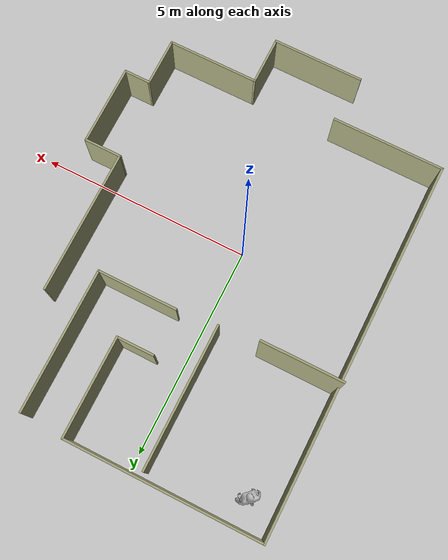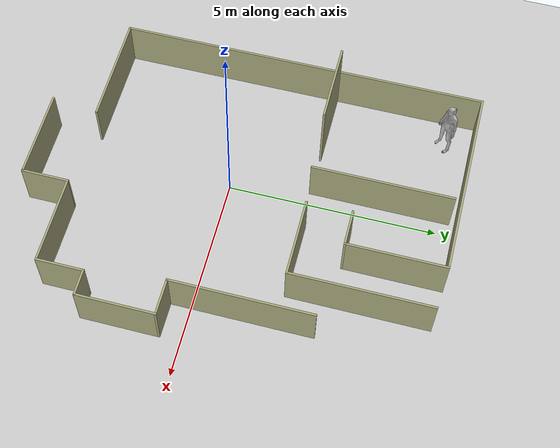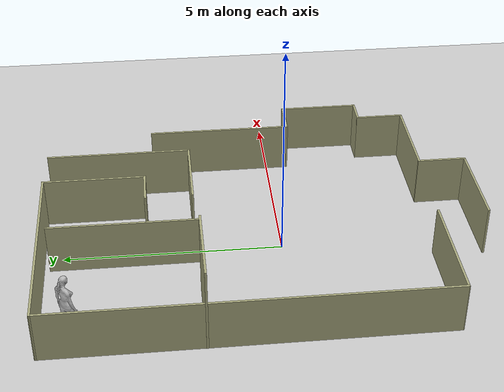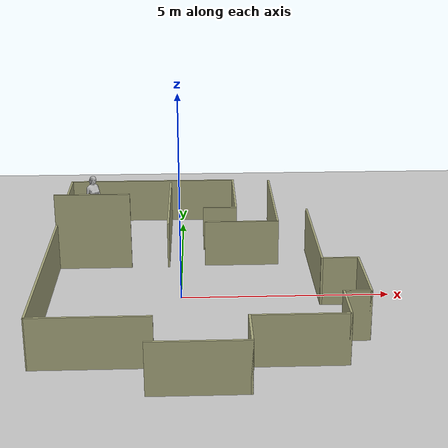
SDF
<?xml version="1.0" ?>

<sdf version="1.5">
  <!-- We use a custom world for the robot so that the camera angle is launched correctly -->
  <world name="diff_drive_world">

    <!-- Add a ground plane -->
    <include>
        <uri>model://ground_plane</uri>
        <material>
            <script>
                <uri>file://media/materials/scripts/gazebo.material</uri>
            </script>
        </material>
    </include>

    <!-- Global light source -->
    <include>
      <uri>model://sun</uri>
    </include>

    <!-- Apartment Walls -->
    <include>
      <uri>model://apartment</uri>
      <pose>0.491830 0.433522 0 0 0 0</pose>
    </include>

    <!-- Human -->
    <include>
		<uri>model://test_human</uri>
		<pose>-2.5 4.75 0 0 1.57 -0.8</pose>
    </include>

    <!-- Set up the solver used for simulation -->
    <physics name="ode_70iters" type="ode">
      <real_time_update_rate>1500</real_time_update_rate>
      <ode>
        <solver>
          <type>quick</type>
          <iters>70</iters>
        </solver>
      </ode>
    </physics>

  </world>
</sdf>

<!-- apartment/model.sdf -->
<sdf version='1.6'>
  <model name='walls'>
    <pose frame=''>0.070483 0.106017 0 0 -0 0</pose>

    <link name='Wall_19'>
      <collision name='Wall_19_Collision'>
        <geometry>
          <box>
            <size>1.9 0.05 2.0</size>
          </box>
        </geometry>
        <pose frame=''>0 0 1.0 0 -0 0</pose>
      </collision>
      <visual name='Wall_19_Visual'>
        <pose frame=''>0 0 1.0 0 -0 0</pose>
        <geometry>
          <box>
            <size>1.9 0.05 2.0</size>
          </box>
        </geometry>
        <material>
          <script>
            <uri>file://media/materials/scripts/gazebo.material</uri>
            <name>Gazebo/Grey</name>
          </script>
          <ambient>0.666667 0.666667 0.498039 1</ambient>
        </material>
      </visual>
      <pose frame=''>-2.73248 1.48798 0 0 -0 0</pose>
    </link>
    <link name='Wall_21'>
      <collision name='Wall_21_Collision'>
        <geometry>
          <box>
            <size>2.15 0.05 1.2</size>
          </box>
        </geometry>
        <pose frame=''>0 0 0.6 0 -0 0</pose>
      </collision>
      <visual name='Wall_21_Visual'>
        <pose frame=''>0 0 0.6 0 -0 0</pose>
        <geometry>
          <box>
            <size>2.15 0.05 1.2</size>
          </box>
        </geometry>
        <material>
          <script>
            <uri>file://media/materials/scripts/gazebo.material</uri>
            <name>Gazebo/Grey</name>
          </script>
          <ambient>0.666667 0.666667 0.498039 1</ambient>
        </material>
      </visual>
      <pose frame=''>-0.092483 -4.98802 0 0 -0 0</pose>
    </link>
    <link name='Wall_22'>
      <collision name='Wall_22_Collision'>
        <geometry>
          <box>
            <size>1.15 0.05 1.2</size>
          </box>
        </geometry>
        <pose frame=''>0 0 0.6 0 -0 0</pose>
      </collision>
      <visual name='Wall_22_Visual'>
        <pose frame=''>0 0 0.6 0 -0 0</pose>
        <geometry>
          <box>
            <size>1.15 0.05 1.2</size>
          </box>
        </geometry>
        <material>
          <script>
            <uri>file://media/materials/scripts/gazebo.material</uri>
            <name>Gazebo/Grey</name>
          </script>
          <ambient>0.666667 0.666667 0.498039 1</ambient>
        </material>
      </visual>
      <pose frame=''>0.957517 -4.43802 0 0 -0 1.5708</pose>
    </link>
    <link name='Wall_23'>
      <collision name='Wall_23_Collision'>
        <geometry>
          <box>
            <size>2.15 0.05 1.2</size>
          </box>
        </geometry>
        <pose frame=''>0 0 0.6 0 -0 0</pose>
      </collision>
      <visual name='Wall_23_Visual'>
        <pose frame=''>0 0 0.6 0 -0 0</pose>
        <geometry>
          <box>
            <size>2.15 0.05 1.2</size>
          </box>
        </geometry>
        <material>
          <script>
            <uri>file://media/materials/scripts/gazebo.material</uri>
            <name>Gazebo/Grey</name>
          </script>
          <ambient>0.666667 0.666667 0.498039 1</ambient>
        </material>
      </visual>
      <pose frame=''>2.00752 -3.88802 0 0 -0 0</pose>
    </link>
    <link name='Wall_24'>
      <collision name='Wall_24_Collision'>
        <geometry>
          <box>
            <size>1.15 0.05 1.2</size>
          </box>
        </geometry>
        <pose frame=''>0 0 0.6 0 -0 0</pose>
      </collision>
      <visual name='Wall_24_Visual'>
        <pose frame=''>0 0 0.6 0 -0 0</pose>
        <geometry>
          <box>
            <size>1.15 0.05 1.2</size>
          </box>
        </geometry>
        <material>
          <script>
            <uri>file://media/materials/scripts/gazebo.material</uri>
            <name>Gazebo/Grey</name>
          </script>
          <ambient>0.666667 0.666667 0.498039 1</ambient>
        </material>
      </visual>
      <pose frame=''>3.05752 -3.33802 0 0 -0 1.5708</pose>
    </link>
    <link name='Wall_25'>
      <collision name='Wall_25_Collision'>
        <geometry>
          <box>
            <size>0.65 0.05 1.2</size>
          </box>
        </geometry>
        <pose frame=''>0 0 0.6 0 -0 0</pose>
      </collision>
      <visual name='Wall_25_Visual'>
        <pose frame=''>0 0 0.6 0 -0 0</pose>
        <geometry>
          <box>
            <size>0.65 0.05 1.2</size>
          </box>
        </geometry>
        <material>
          <script>
            <uri>file://media/materials/scripts/gazebo.material</uri>
            <name>Gazebo/Grey</name>
          </script>
          <ambient>0.666667 0.666667 0.498039 1</ambient>
        </material>
      </visual>
      <pose frame=''>3.35752 -2.78802 0 0 -0 0</pose>
    </link>
    <link name='Wall_26'>
      <collision name='Wall_26_Collision'>
        <geometry>
          <box>
            <size>1.9 0.05 1.2</size>
          </box>
        </geometry>
        <pose frame=''>0 0 0.6 0 -0 0</pose>
      </collision>
      <visual name='Wall_26_Visual'>
        <pose frame=''>0 0 0.6 0 -0 0</pose>
        <geometry>
          <box>
            <size>1.9 0.05 1.2</size>
          </box>
        </geometry>
        <material>
          <script>
            <uri>file://media/materials/scripts/gazebo.material</uri>
            <name>Gazebo/Grey</name>
          </script>
          <ambient>0.666667 0.666667 0.498039 1</ambient>
        </material>
      </visual>
      <pose frame=''>3.65752 -1.86302 0 0 -0 1.5708</pose>
    </link>
    <link name='Wall_27'>
      <collision name='Wall_27_Collision'>
        <geometry>
          <box>
            <size>0.9 0.05 1.2</size>
          </box>
        </geometry>
        <pose frame=''>0 0 0.6 0 -0 0</pose>
      </collision>
      <visual name='Wall_27_Visual'>
        <pose frame=''>0 0 0.6 0 -0 0</pose>
        <geometry>
          <box>
            <size>0.9 0.05 1.2</size>
          </box>
        </geometry>
        <material>
          <script>
            <uri>file://media/materials/scripts/gazebo.material</uri>
            <name>Gazebo/Grey</name>
          </script>
          <ambient>0.666667 0.666667 0.498039 1</ambient>
        </material>
      </visual>
      <pose frame=''>3.23252 -0.938017 0 0 -0 3.14159</pose>
    </link>
    <link name='Wall_36'>
      <collision name='Wall_36_Collision'>
        <geometry>
          <box>
            <size>1.9 0.05 1.2</size>
          </box>
        </geometry>
        <pose frame=''>0 0 0.6 0 -0 0</pose>
      </collision>
      <visual name='Wall_36_Visual'>
        <pose frame=''>0 0 0.6 0 -0 0</pose>
        <geometry>
          <box>
            <size>1.9 0.05 1.2</size>
          </box>
        </geometry>
        <material>
          <script>
            <uri>file://media/materials/scripts/gazebo.material</uri>
            <name>Gazebo/Grey</name>
          </script>
          <ambient>0.666667 0.666667 0.498039 1</ambient>
        </material>
      </visual>
      <pose frame=''>1.04652 1.55798 0 0 -0 0</pose>
    </link>
    <link name='Wall_48'>
      <collision name='Wall_48_Collision'>
        <geometry>
          <box>
            <size>8.90001 0.05 1.2</size>
          </box>
        </geometry>
        <pose frame=''>0 0 0.6 0 -0 0</pose>
      </collision>
      <visual name='Wall_48_Visual'>
        <pose frame=''>0 0 0.6 0 -0 0</pose>
        <geometry>
          <box>
            <size>8.90001 0.05 1.2</size>
          </box>
        </geometry>
        <material>
          <script>
            <uri>file://media/materials/scripts/gazebo.material</uri>
            <name>Gazebo/Grey</name>
          </script>
          <ambient>0.666667 0.666667 0.498039 1</ambient>
        </material>
      </visual>
      <pose frame=''>-3.65148 0.562983 0 0 -0 1.57215</pose>
    </link>
    <link name='Wall_49'>
      <collision name='Wall_49_Collision'>
        <geometry>
          <box>
            <size>4.65 0.05 1.2</size>
          </box>
        </geometry>
        <pose frame=''>0 0 0.6 0 -0 0</pose>
      </collision>
      <visual name='Wall_49_Visual'>
        <pose frame=''>0 0 0.6 0 -0 0</pose>
        <geometry>
          <box>
            <size>4.65 0.05 1.2</size>
          </box>
        </geometry>
        <material>
          <script>
            <uri>file://media/materials/scripts/gazebo.material</uri>
            <name>Gazebo/Grey</name>
          </script>
          <ambient>0.666667 0.666667 0.498039 1</ambient>
        </material>
      </visual>
      <pose frame=''>-1.35748 4.98798 0 0 -0 0</pose>
    </link>
    <link name='Wall_50'>
      <collision name='Wall_50_Collision'>
        <geometry>
          <box>
            <size>2.4 0.05 1.2</size>
          </box>
        </geometry>
        <pose frame=''>0 0 0.6 0 -0 0</pose>
      </collision>
      <visual name='Wall_50_Visual'>
        <pose frame=''>0 0 0.6 0 -0 0</pose>
        <geometry>
          <box>
            <size>2.4 0.05 1.2</size>
          </box>
        </geometry>
        <material>
          <script>
            <uri>file://media/materials/scripts/gazebo.material</uri>
            <name>Gazebo/Grey</name>
          </script>
          <ambient>0.666667 0.666667 0.498039 1</ambient>
        </material>
      </visual>
      <pose frame=''>0.942517 3.81298 0 0 0 -1.5708</pose>
    </link>
    <link name='Wall_51'>
      <collision name='Wall_51_Collision'>
        <geometry>
          <box>
            <size>0.9 0.05 1.2</size>
          </box>
        </geometry>
        <pose frame=''>0 0 0.6 0 -0 0</pose>
      </collision>
      <visual name='Wall_51_Visual'>
        <pose frame=''>0 0 0.6 0 -0 0</pose>
        <geometry>
          <box>
            <size>0.9 0.05 1.2</size>
          </box>
        </geometry>
        <material>
          <script>
            <uri>file://media/materials/scripts/gazebo.material</uri>
            <name>Gazebo/Grey</name>
          </script>
          <ambient>0.666667 0.666667 0.498039 1</ambient>
        </material>
      </visual>
      <pose frame=''>0.517517 2.63798 0 0 -0 3.14159</pose>
    </link>
    <link name='Wall_53'>
      <collision name='Wall_53_Collision'>
        <geometry>
          <box>
            <size>3.4 0.05 1.2</size>
          </box>
        </geometry>
        <pose frame=''>0 0 0.6 0 -0 0</pose>
      </collision>
      <visual name='Wall_53_Visual'>
        <pose frame=''>0 0 0.6 0 -0 0</pose>
        <geometry>
          <box>
            <size>3.4 0.05 1.2</size>
          </box>
        </geometry>
        <material>
          <script>
            <uri>file://media/materials/scripts/gazebo.material</uri>
            <name>Gazebo/Grey</name>
          </script>
          <ambient>0.666667 0.666667 0.498039 1</ambient>
        </material>
      </visual>
      <pose frame=''>-0.835483 3.14198 0 0 -0 1.5708</pose>
    </link>
    <link name='Wall_58'>
      <collision name='Wall_58_Collision'>
        <geometry>
          <box>
            <size>3.4 0.05 1.2</size>
          </box>
        </geometry>
        <pose frame=''>0 0 0.6 0 -0 0</pose>
      </collision>
      <visual name='Wall_58_Visual'>
        <pose frame=''>0 0 0.6 0 -0 0</pose>
        <geometry>
          <box>
            <size>3.4 0.05 1.2</size>
          </box>
        </geometry>
        <material>
          <script>
            <uri>file://media/materials/scripts/gazebo.material</uri>
            <name>Gazebo/Grey</name>
          </script>
          <ambient>0.666667 0.666667 0.498039 1</ambient>
        </material>
      </visual>
      <pose frame=''>1.97152 3.23298 0 0 -0 1.5708</pose>
    </link>
    <link name='Wall_61'>
      <collision name='Wall_61_Collision'>
        <geometry>
          <box>
            <size>2.65 0.05 1.2</size>
          </box>
        </geometry>
        <pose frame=''>0 0 0.6 0 -0 0</pose>
      </collision>
      <visual name='Wall_61_Visual'>
        <pose frame=''>0 0 0.6 0 -0 0</pose>
        <geometry>
          <box>
            <size>2.65 0.05 1.2</size>
          </box>
        </geometry>
        <material>
          <script>
            <uri>file://media/materials/scripts/gazebo.material</uri>
            <name>Gazebo/Grey</name>
          </script>
          <ambient>0.666667 0.666667 0.498039 1</ambient>
        </material>
      </visual>
      <pose frame=''>-2.34548 -3.86202 0 0 -0 0</pose>
    </link>
    <link name='Wall_63'>
      <collision name='Wall_63_Collision'>
        <geometry>
          <box>
            <size>3.4 0.05 1.2</size>
          </box>
        </geometry>
        <pose frame=''>0 0 0.6 0 -0 0</pose>
      </collision>
      <visual name='Wall_63_Visual'>
        <pose frame=''>0 0 0.6 0 -0 0</pose>
        <geometry>
          <box>
            <size>3.4 0.05 1.2</size>
          </box>
        </geometry>
        <material>
          <script>
            <uri>file://media/materials/scripts/gazebo.material</uri>
            <name>Gazebo/Grey</name>
          </script>
          <ambient>0.666667 0.666667 0.498039 1</ambient>
        </material>
      </visual>
      <pose frame=''>2.80752 0.736983 0 0 -0 1.5708</pose>
    </link>
    <static>1</static>
  </model>
</sdf>

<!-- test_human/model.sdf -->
<sdf version="1.5">
  <model name="test_human">
    <link name="link">

      <inertial>
        <pose>0 -0.1 0.95 0 0 0</pose>
        <mass>60.0</mass>
        <inertia>
          <ixx>24.88</ixx>
          <ixy>0.0</ixy>
          <ixz>0.0</ixz>
          <iyy>25.73</iyy>
          <iyz>0.0</iyz>
          <izz>2.48</izz>
        </inertia>
      </inertial>

      <collision name="bottom">
		<pose>0 0 0.01 0 0 1.57</pose>
		<geometry>
			<box>
				<size>0.5 0.35 0.02</size>
			</box>
		</geometry>
      </collision>

      <collision name="person">
		<pose>0 0 0.02 0 0 1.57</pose>
        <geometry>
          <mesh>
            <uri>model://test_human/meshes/test_human.dae</uri>
          </mesh>
        </geometry>
      </collision>

      <visual name="test_human_visual">
      <pose>0 0 0.02 0 0 1.57</pose>
      <geometry>
		<mesh>
			<uri>model://test_human/meshes/test_human.dae</uri>
		</mesh>
	  </geometry>
	  </visual>

    </link>
    <static>1</static>
  </model>
</sdf>
